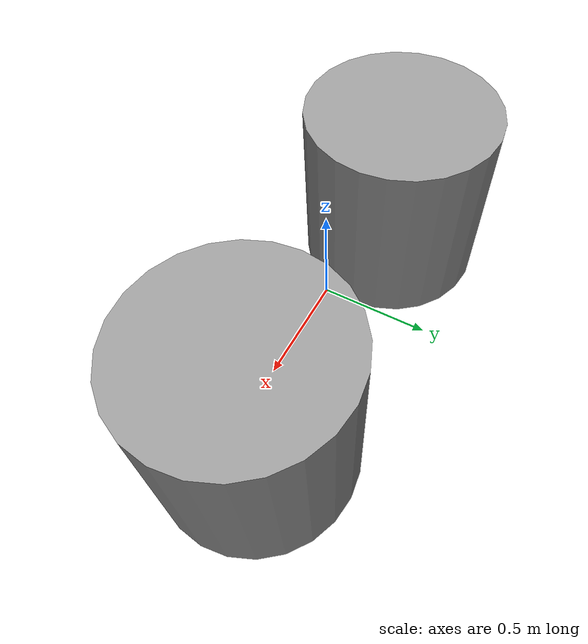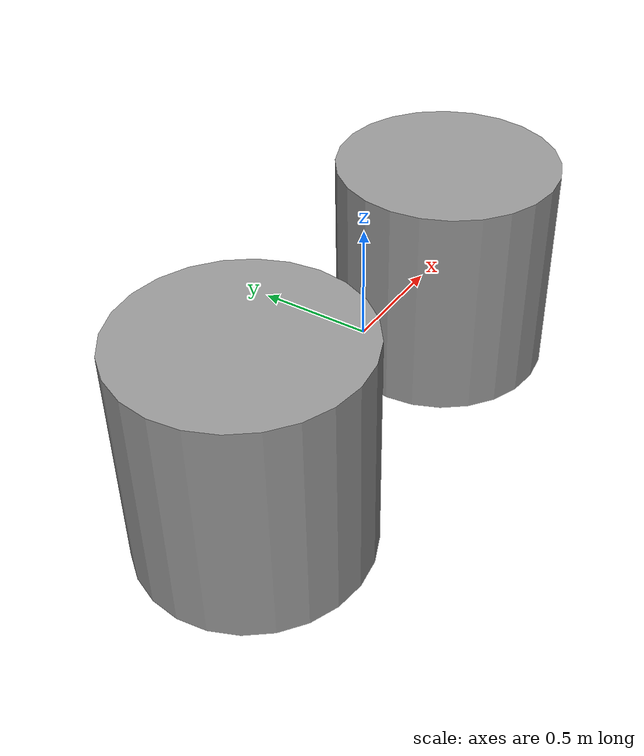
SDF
<?xml version='1.0'?>
<sdf version='1.6'>
  <model name='support'>
    <link name='link_0_0'>
      <inertial>
        <mass>5969.03</mass>
        <inertia>
          <ixx>870.483</ixx>
          <ixy>0</ixy>
          <ixz>0</ixz>
          <iyy>870.483</iyy>
          <iyz>0</iyz>
          <izz>746.128</izz>
        </inertia>
        <pose frame=''>0 0 0 0 -0 0</pose>
      </inertial>
      <pose frame=''>0.691765 -0.007598 0 0 -0 5e-05</pose>
      <self_collide>0</self_collide>
      <enable_wind>0</enable_wind>
      <kinematic>0</kinematic>
      <gravity>1</gravity>
      <visual name='visual'>
        <pose frame=''>0 0 0 0 -0 0</pose>
        <geometry>
          <cylinder>
            <radius>0.5</radius>
            <length>1</length>
          </cylinder>
        </geometry>
        <material>
          <lighting>1</lighting>
          <script>
            <uri>file://media/materials/scripts/gazebo.material</uri>
            <name>Gazebo/Grey</name>
          </script>
          <shader type='pixel'>
            <normal_map>__default__</normal_map>
          </shader>
        </material>
        <transparency>0</transparency>
        <cast_shadows>1</cast_shadows>
      </visual>
      <collision name='collision'>
        <laser_retro>0</laser_retro>
        <max_contacts>10</max_contacts>
        <pose frame=''>0 0 0 0 -0 0</pose>
        <geometry>
          <cylinder>
            <radius>0.5</radius>
            <length>1</length>
          </cylinder>
        </geometry>
        <surface>
          <friction>
            <ode>
              <mu>1</mu>
              <mu2>1</mu2>
              <fdir1>0 0 0</fdir1>
              <slip1>0</slip1>
              <slip2>0</slip2>
            </ode>
            <torsional>
              <coefficient>1</coefficient>
              <patch_radius>0</patch_radius>
              <surface_radius>0</surface_radius>
              <use_patch_radius>1</use_patch_radius>
              <ode>
                <slip>0</slip>
              </ode>
            </torsional>
          </friction>
          <bounce>
            <restitution_coefficient>0</restitution_coefficient>
            <threshold>1e+06</threshold>
          </bounce>
          <contact>
            <collide_without_contact>0</collide_without_contact>
            <collide_without_contact_bitmask>1</collide_without_contact_bitmask>
            <collide_bitmask>1</collide_bitmask>
            <ode>
              <soft_cfm>0</soft_cfm>
              <soft_erp>0.2</soft_erp>
              <kp>1e+13</kp>
              <kd>1</kd>
              <max_vel>0.01</max_vel>
              <min_depth>0</min_depth>
            </ode>
            <bullet>
              <split_impulse>1</split_impulse>
              <split_impulse_penetration_threshold>-0.01</split_impulse_penetration_threshold>
              <soft_cfm>0</soft_cfm>
              <soft_erp>0.2</soft_erp>
              <kp>1e+13</kp>
              <kd>1</kd>
            </bullet>
          </contact>
        </surface>
      </collision>
    </link>
    <link name='link_1'>
      <inertial>
        <mass>1e+06</mass>
        <inertia>
          <ixx>145833</ixx>
          <ixy>0</ixy>
          <ixz>0</ixz>
          <iyy>145833</iyy>
          <iyz>0</iyz>
          <izz>125000</izz>
        </inertia>
        <pose frame=''>0 0 0 0 -0 0</pose>
      </inertial>
      <pose frame=''>-0.818221 -0.000992 -0 0 0 -0.000749</pose>
      <gravity>1</gravity>
      <self_collide>0</self_collide>
      <kinematic>0</kinematic>
      <enable_wind>0</enable_wind>
      <visual name='visual'>
        <pose frame=''>0 0 0 0 -0 0</pose>
        <geometry>
          <cylinder>
            <radius>0.5</radius>
            <length>1</length>
          </cylinder>
        </geometry>
        <material>
          <lighting>1</lighting>
          <script>
            <uri>file://media/materials/scripts/gazebo.material</uri>
            <name>Gazebo/Grey</name>
          </script>
          <shader type='pixel'>
            <normal_map>__default__</normal_map>
          </shader>
        </material>
        <transparency>0</transparency>
        <cast_shadows>1</cast_shadows>
      </visual>
      <collision name='collision'>
        <laser_retro>0</laser_retro>
        <max_contacts>10</max_contacts>
        <pose frame=''>0 0 0 0 -0 0</pose>
        <geometry>
          <cylinder>
            <radius>0.5</radius>
            <length>1</length>
          </cylinder>
        </geometry>
        <surface>
          <friction>
            <ode>
              <mu>1</mu>
              <mu2>1</mu2>
              <fdir1>0 0 0</fdir1>
              <slip1>0</slip1>
              <slip2>0</slip2>
            </ode>
            <torsional>
              <coefficient>1</coefficient>
              <patch_radius>0</patch_radius>
              <surface_radius>0</surface_radius>
              <use_patch_radius>1</use_patch_radius>
              <ode>
                <slip>0</slip>
              </ode>
            </torsional>
          </friction>
          <bounce>
            <restitution_coefficient>0</restitution_coefficient>
            <threshold>1e+06</threshold>
          </bounce>
          <contact>
            <collide_without_contact>0</collide_without_contact>
            <collide_without_contact_bitmask>1</collide_without_contact_bitmask>
            <collide_bitmask>1</collide_bitmask>
            <ode>
              <soft_cfm>0</soft_cfm>
              <soft_erp>0.2</soft_erp>
              <kp>1e+13</kp>
              <kd>1</kd>
              <max_vel>0.01</max_vel>
              <min_depth>0</min_depth>
            </ode>
            <bullet>
              <split_impulse>1</split_impulse>
              <split_impulse_penetration_threshold>-0.01</split_impulse_penetration_threshold>
              <soft_cfm>0</soft_cfm>
              <soft_erp>0.2</soft_erp>
              <kp>1e+13</kp>
              <kd>1</kd>
            </bullet>
          </contact>
        </surface>
      </collision>
    </link>
    <static>0</static>
    <allow_auto_disable>1</allow_auto_disable>
  </model>
</sdf>
